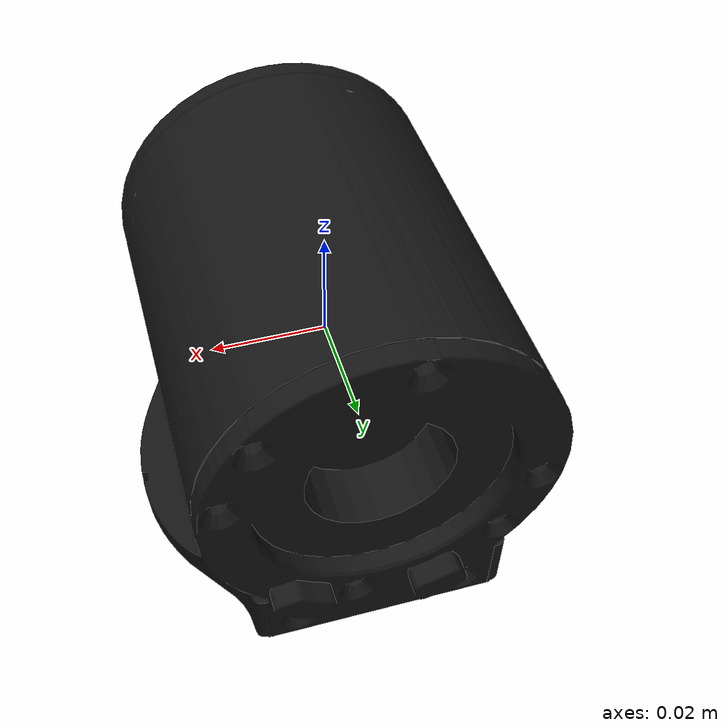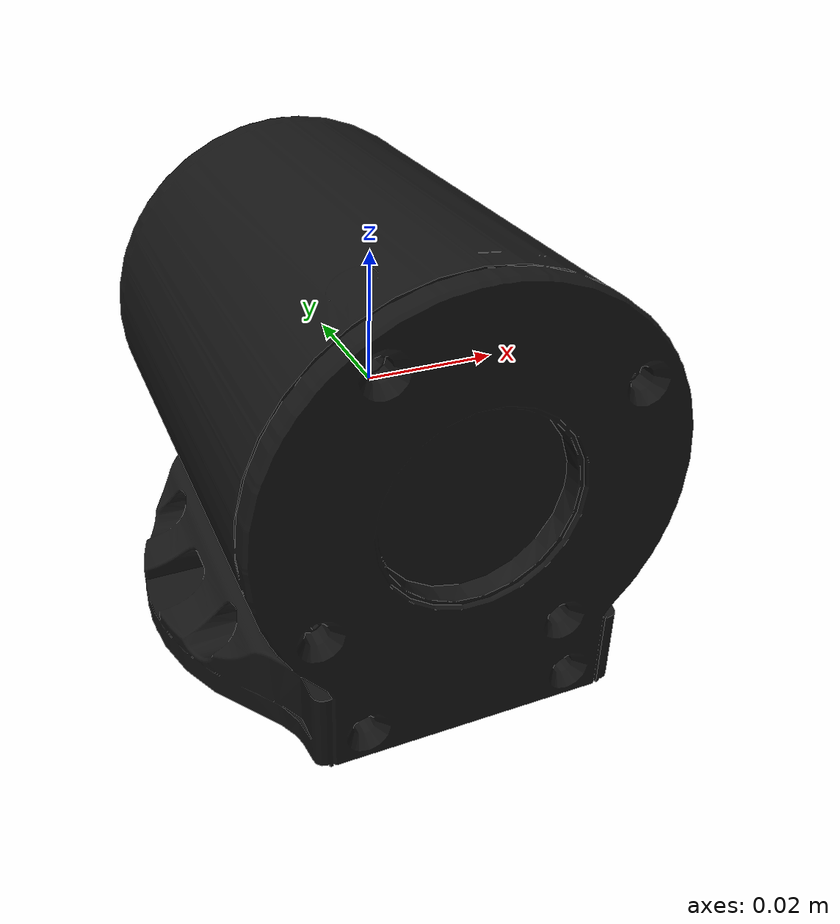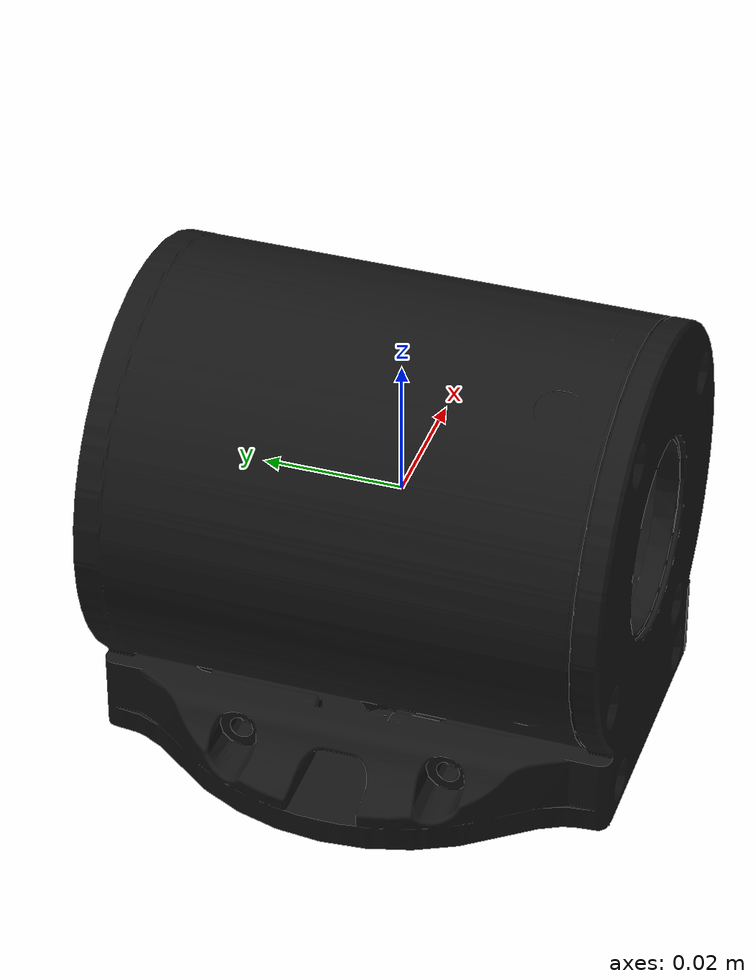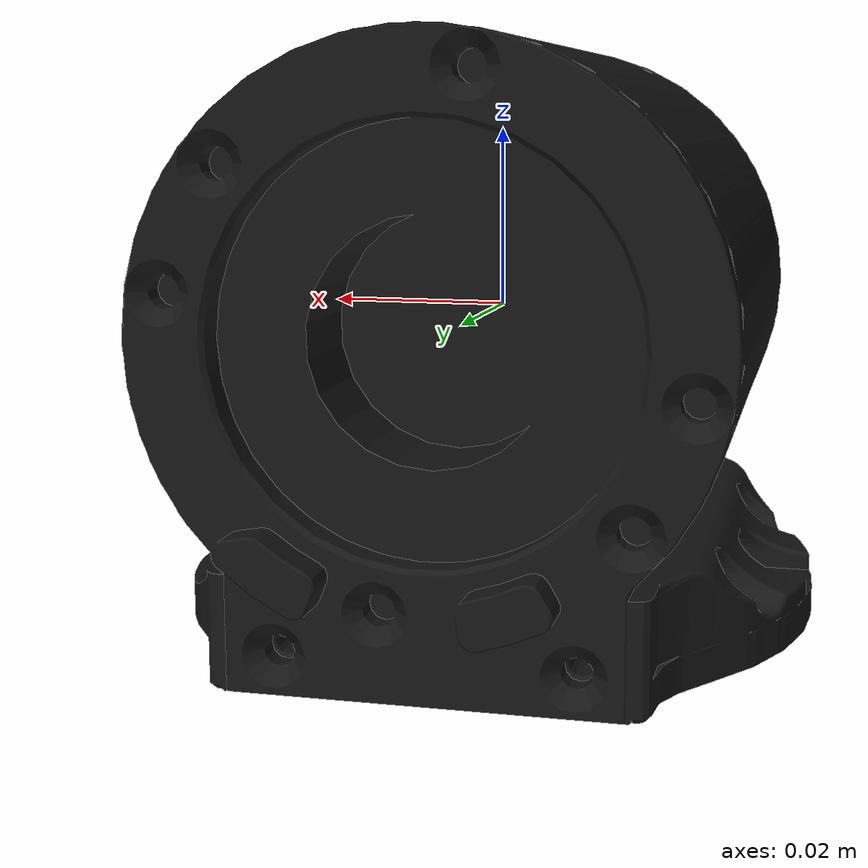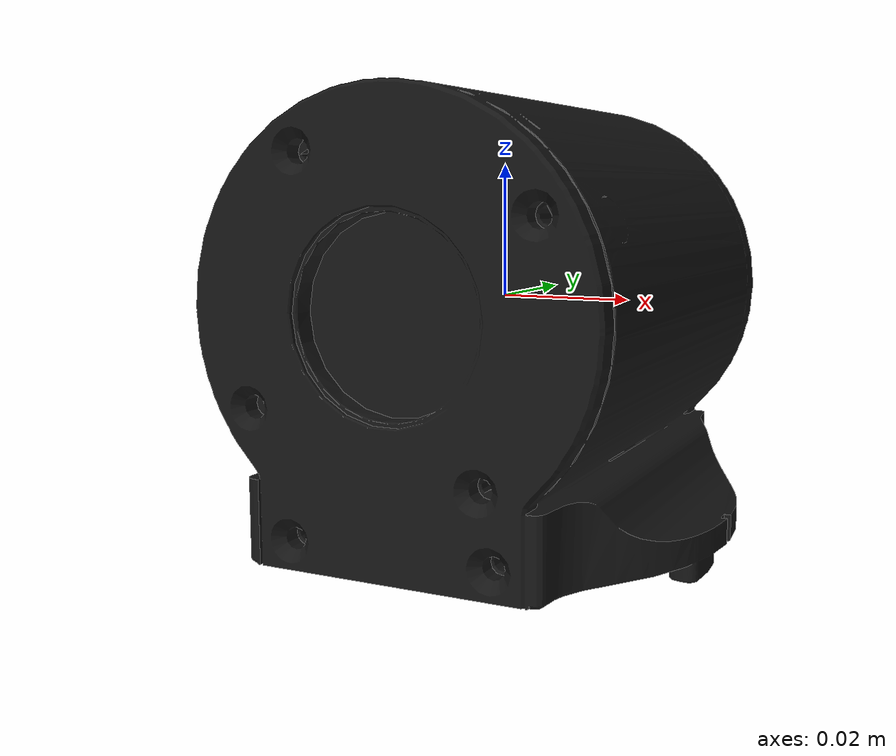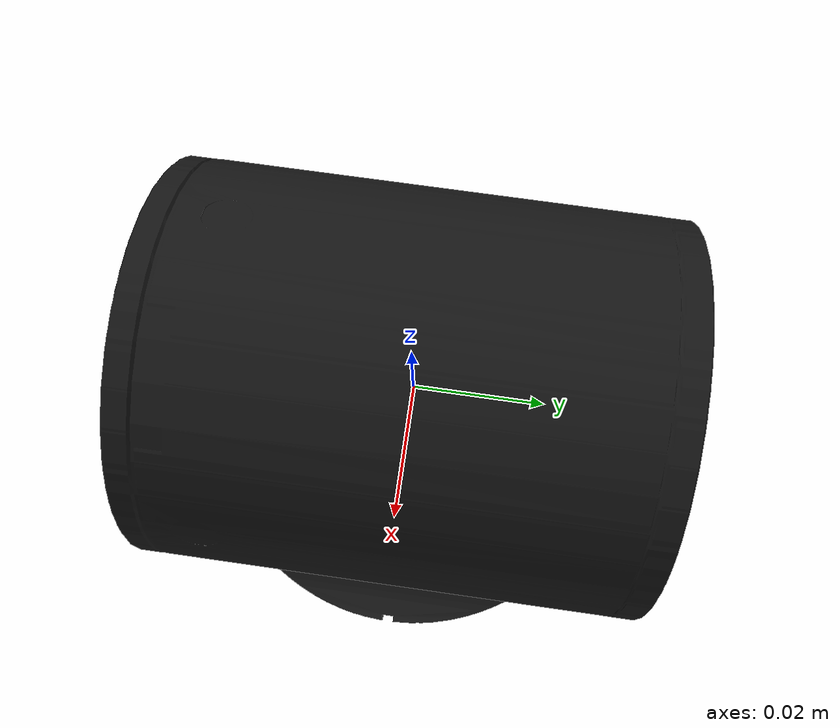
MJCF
<mujoco model="link1">
  <default>
    <default class="visual">
      <geom group="2" type="mesh" contype="0" conaffinity="0"/>
    </default>
    <default class="collision">
      <geom group="3" type="mesh"/>
    </default>
  </default>
  <asset>
    <material name="grey_metal.001" specular="0.5" shininess="0.09604875199999999" rgba="0.081647 0.081647 0.081647 1.000000"/>
    <mesh file="link1.obj"/>
    <mesh file="link1_collision_0.obj"/>
    <mesh file="link1_collision_1.obj"/>
    <mesh file="link1_collision_2.obj"/>
  </asset>
  <worldbody>
    <body name="link1">
      <geom material="grey_metal.001" mesh="link1" class="visual"/>
      <geom mesh="link1_collision_0" rgba="0.16841603813453465 0.36298282263275894 0.27538412060752593 1" class="collision"/>
      <geom mesh="link1_collision_1" rgba="0.7864409517860348 0.8650718247204585 0.03593628574883745 1" class="collision"/>
      <geom mesh="link1_collision_2" rgba="0.3792246093602938 0.7794747059612656 0.8109812411225951 1" class="collision"/>
    </body>
  </worldbody>
</mujoco>
